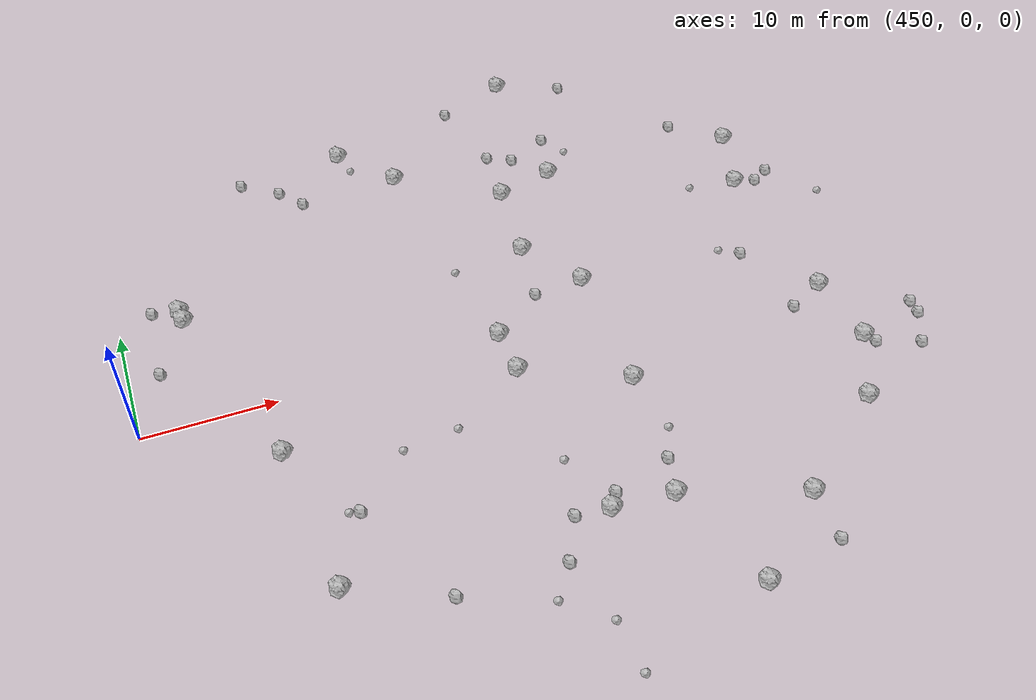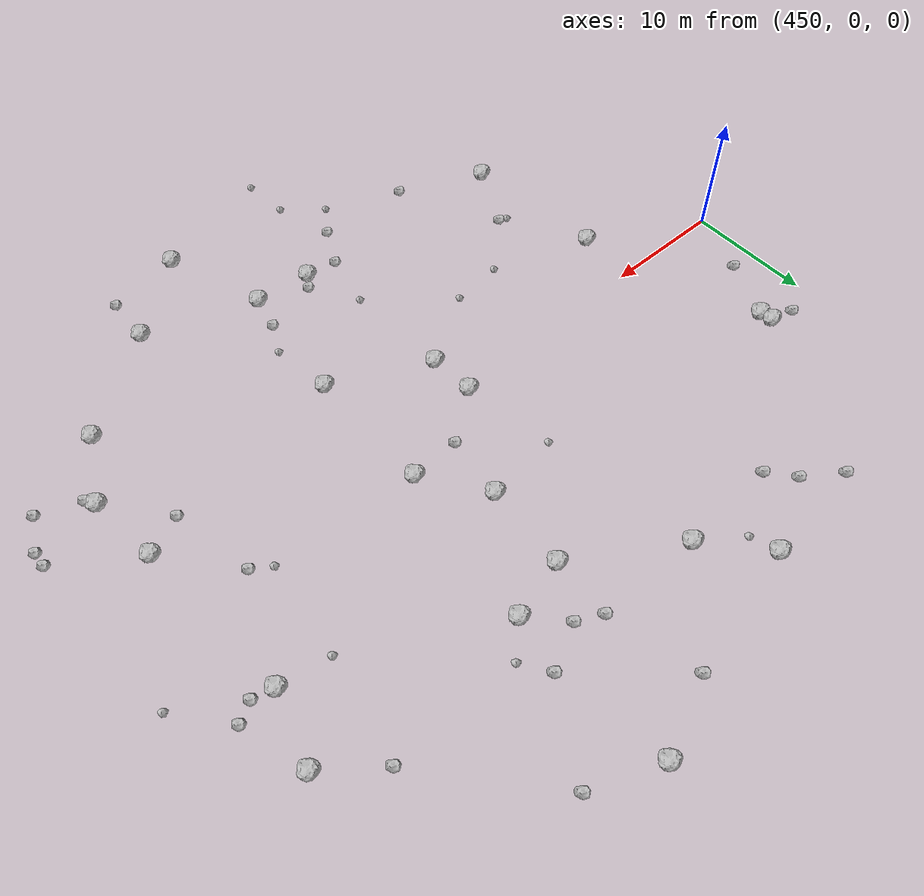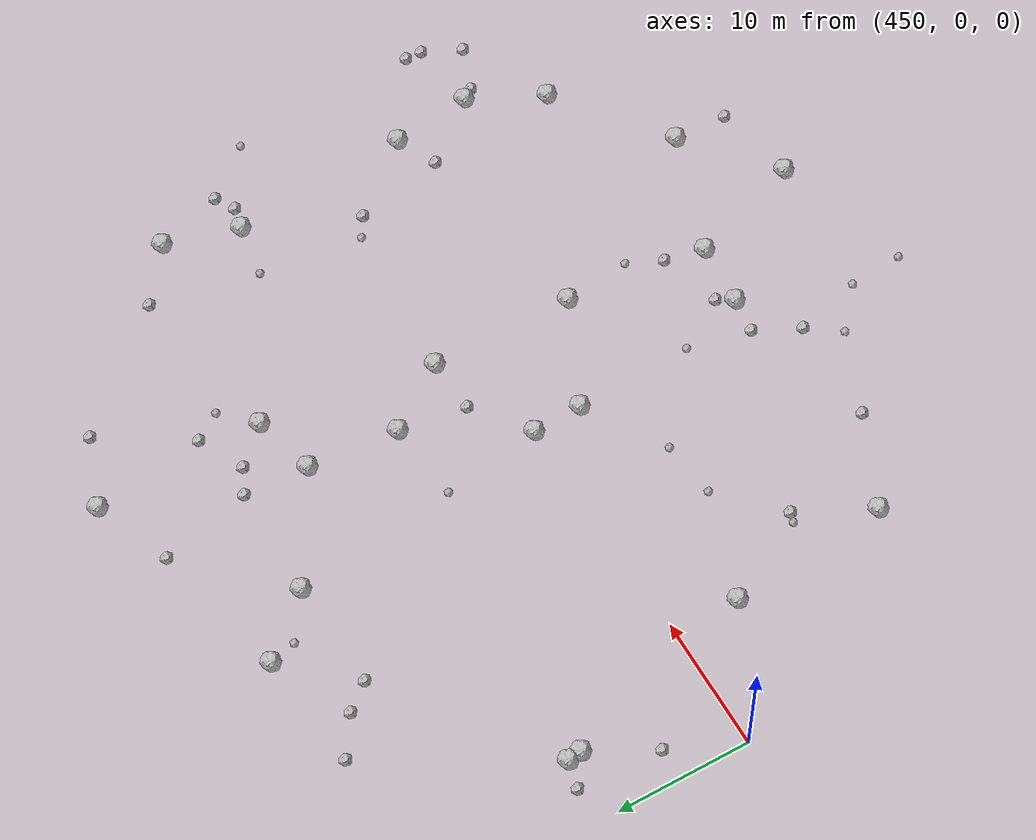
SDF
<sdf version="1.6">
 <world name="default">
  <include><uri>model://sun</uri></include>
  <model name="rock1_12_4">
   <include><uri>model://rock1</uri><pose>486.71268099229087 -25.438549325538915 0.5 0 0 0</pose></include>
  </model>
  <model name="rock1_12_5">
   <include><uri>model://rock1</uri><pose>492.8166071448539 -20.176126063927207 0.5 0 0 0</pose></include>
  </model>
  <model name="rock1_12_6">
   <include><uri>model://rock1</uri><pose>501.6473389458083 10.15743567219505 0.5 0 0 0</pose></include>
  </model>
  <model name="rock1_12_7">
   <include><uri>model://rock1</uri><pose>454.88779822414614 9.99733758299989 0.5 0 0 0</pose></include>
  </model>
  <model name="rock1_12_8">
   <include><uri>model://rock1</uri><pose>454.74939487316266 11.033216058486275 0.5 0 0 0</pose></include>
  </model>
  <model name="rock1_12_9">
   <include><uri>model://rock1</uri><pose>460.39612671076225 -16.616183947173873 0.5 0 0 0</pose></include>
  </model>
  <model name="rock1_12_10">
   <include><uri>model://rock1</uri><pose>503.2266049548724 -8.808707538663153 0.5 0 0 0</pose></include>
  </model>
  <model name="rock1_12_11">
   <include><uri>model://rock1</uri><pose>486.8501290716257 29.106871358682156 0.5 0 0 0</pose></include>
  </model>
  <model name="rock1_12_12">
   <include><uri>model://rock1</uri><pose>502.5313266429846 -2.9592155335735306 0.5 0 0 0</pose></include>
  </model>
  <model name="rock1_12_13">
   <include><uri>model://rock1</uri><pose>485.21618298309676 3.801018665662795 0.5 0 0 0</pose></include>
  </model>
  <model name="rock1_12_14">
   <include><uri>model://rock1</uri><pose>485.1292502573406 -6.767481153414899 0.5 0 0 0</pose></include>
  </model>
  <model name="rock1_12_15">
   <include><uri>model://rock1</uri><pose>479.2644201717403 -16.811341904872194 0.5 0 0 0</pose></include>
  </model>
  <model name="rock1_12_16">
   <include><uri>model://rock1</uri><pose>500.57046418815867 -14.099765747462712 0.5 0 0 0</pose></include>
  </model>
  <model name="rock1_12_17">
   <include><uri>model://rock1</uri><pose>482.52034096166835 15.29335865158977 0.5 0 0 0</pose></include>
  </model>
  <model name="rock1_12_18">
   <include><uri>model://rock1</uri><pose>477.198535277547 0.5362063339232819 0.5 0 0 0</pose></include>
  </model>
  <model name="rock1_12_19">
   <include><uri>model://rock1</uri><pose>487.1245165356307 16.518813257496483 0.5 0 0 0</pose></include>
  </model>
  <model name="rock1_12_20">
   <include><uri>model://rock1</uri><pose>481.92490238814725 8.582775652782544 0.5 0 0 0</pose></include>
  </model>
  <model name="rock1_12_21">
   <include><uri>model://rock1</uri><pose>474.5593548294113 20.162787073175686 0.5 0 0 0</pose></include>
  </model>
  <model name="rock1_12_22">
   <include><uri>model://rock1</uri><pose>503.19335711201416 15.588748424163313 0.5 0 0 0</pose></include>
  </model>
  <model name="rock1_12_23">
   <include><uri>model://rock1</uri><pose>477.36037951443944 -3.1570808231034633 0.5 0 0 0</pose></include>
  </model>
  <model name="rock1_12_24">
   <include><uri>model://rock1</uri><pose>470.7506974195005 24.51172418650262 0.5 0 0 0</pose></include>
  </model>
  <model name="rock1_12_25">
   <include><uri>model://rock1</uri><pose>483.8698793238803 -17.13378510829039 0.5 0 0 0</pose></include>
  </model>
  <model name="rock1_12_26">
   <include><uri>model://rock1</uri><pose>459.2964798253679 -4.781102411854523 0.5 0 0 0</pose></include>
  </model>
  <model name="rock2_12_0">
   <include><uri>model://rock2</uri><pose>491.9593075206605 27.060503356933353 0.3 0 0 0</pose></include>
  </model>
  <model name="rock2_12_1">
   <include><uri>model://rock2</uri><pose>498.2191981673955 2.235399047413459 0.3 0 0 0</pose></include>
  </model>
  <model name="rock2_12_2">
   <include><uri>model://rock2</uri><pose>506.97277284418703 -10.853905218767562 0.3 0 0 0</pose></include>
  </model>
  <model name="rock2_12_3">
   <include><uri>model://rock2</uri><pose>481.1627576156546 3.555853790441482 0.3 0 0 0</pose></include>
  </model>
  <model name="rock2_12_4">
   <include><uri>model://rock2</uri><pose>508.3188148385816 -6.914108205946036 0.3 0 0 0</pose></include>
  </model>
  <model name="rock2_12_5">
   <include><uri>model://rock2</uri><pose>462.073781519908 23.640215872550073 0.3 0 0 0</pose></include>
  </model>
  <model name="rock2_12_6">
   <include><uri>model://rock2</uri><pose>499.56241328522873 -4.384556357074235 0.3 0 0 0</pose></include>
  </model>
  <model name="rock2_12_7">
   <include><uri>model://rock2</uri><pose>492.6685300799604 -24.16291406434137 0.3 0 0 0</pose></include>
  </model>
  <model name="rock2_12_8">
   <include><uri>model://rock2</uri><pose>488.02196494077947 20.737357631588225 0.3 0 0 0</pose></include>
  </model>
  <model name="rock2_12_9">
   <include><uri>model://rock2</uri><pose>504.6831537408274 10.585368521408427 0.3 0 0 0</pose></include>
  </model>
  <model name="rock2_12_10">
   <include><uri>model://rock2</uri><pose>464.90142439410903 21.698420146452413 0.3 0 0 0</pose></include>
  </model>
  <model name="rock2_12_11">
   <include><uri>model://rock2</uri><pose>481.1039650947006 26.847108233673303 0.3 0 0 0</pose></include>
  </model>
  <model name="rock2_12_12">
   <include><uri>model://rock2</uri><pose>503.73175684694695 -9.65087261171653 0.3 0 0 0</pose></include>
  </model>
  <model name="rock2_12_13">
   <include><uri>model://rock2</uri><pose>466.47207507208014 19.7633531068322 0.3 0 0 0</pose></include>
  </model>
  <model name="rock2_12_14">
   <include><uri>model://rock2</uri><pose>482.757614551833 20.045721134211284 0.3 0 0 0</pose></include>
  </model>
  <model name="rock2_12_15">
   <include><uri>model://rock2</uri><pose>508.28082220145035 -8.138223198471302 0.3 0 0 0</pose></include>
  </model>
  <model name="rock2_12_16">
   <include><uri>model://rock2</uri><pose>484.5051328338035 -14.25211044170074 0.3 0 0 0</pose></include>
  </model>
  <model name="rock2_12_17">
   <include><uri>model://rock2</uri><pose>499.2479405735879 18.652236983554452 0.3 0 0 0</pose></include>
  </model>
  <model name="rock2_12_18">
   <include><uri>model://rock2</uri><pose>503.26740549879685 9.75474031537118 0.3 0 0 0</pose></include>
  </model>
  <model name="rock2_12_19">
   <include><uri>model://rock2</uri><pose>452.6757966096854 11.5276922462605 0.3 0 0 0</pose></include>
  </model>
  <model name="rock2_12_20">
   <include><uri>model://rock2</uri><pose>463.13532072505785 -11.332631112334617 0.3 0 0 0</pose></include>
  </model>
  <model name="rock2_12_21">
   <include><uri>model://rock2</uri><pose>475.01321335813503 -19.752549818698917 0.3 0 0 0</pose></include>
  </model>
  <model name="rock2_12_22">
   <include><uri>model://rock2</uri><pose>452.31995754617094 5.288794718907901 0.3 0 0 0</pose></include>
  </model>
  <model name="rock2_12_23">
   <include><uri>model://rock2</uri><pose>467.22416784457016 -19.66444213608859 0.3 0 0 0</pose></include>
  </model>
  <model name="rock2_12_24">
   <include><uri>model://rock2</uri><pose>476.6280837791832 -16.532456387235037 0.3 0 0 0</pose></include>
  </model>
  <model name="rock2_12_25">
   <include><uri>model://rock2</uri><pose>479.98331123943166 -15.665368676976122 0.3 0 0 0</pose></include>
  </model>
  <model name="rock2_12_26">
   <include><uri>model://rock2</uri><pose>484.6804429791453 19.10583825623484 0.3 0 0 0</pose></include>
  </model>
  <model name="rock3_12_0">
   <include><uri>model://rock3</uri><pose>467.29480816778323 -7.426872252927041 0.2 0 0 0</pose></include>
  </model>
  <model name="rock3_12_1">
   <include><uri>model://rock3</uri><pose>489.3486946758937 18.656425288844545 0.2 0 0 0</pose></include>
  </model>
  <model name="rock3_12_2">
   <include><uri>model://rock3</uri><pose>471.25028471902044 22.41702925767696 0.2 0 0 0</pose></include>
  </model>
  <model name="rock3_12_3">
   <include><uri>model://rock3</uri><pose>471.518900914461 -6.887169275229208 0.2 0 0 0</pose></include>
  </model>
  <model name="rock3_12_4">
   <include><uri>model://rock3</uri><pose>473.31412972384294 -22.183940578257868 0.2 0 0 0</pose></include>
  </model>
  <model name="rock3_12_5">
   <include><uri>model://rock3</uri><pose>462.3945477892316 -11.156303715800625 0.2 0 0 0</pose></include>
  </model>
  <model name="rock3_12_6">
   <include><uri>model://rock3</uri><pose>476.0262366069784 7.890912293276337 0.2 0 0 0</pose></include>
  </model>
  <model name="rock3_12_7">
   <include><uri>model://rock3</uri><pose>496.74122975182684 3.1273478041163756 0.2 0 0 0</pose></include>
  </model>
  <model name="rock3_12_8">
   <include><uri>model://rock3</uri><pose>477.6329006634342 -11.969188452997688 0.2 0 0 0</pose></include>
  </model>
  <model name="rock3_12_9">
   <include><uri>model://rock3</uri><pose>476.30118378201377 -24.696739764085265 0.2 0 0 0</pose></include>
  </model>
  <model name="rock3_12_10">
   <include><uri>model://rock3</uri><pose>497.7033942207546 10.69864778292299 0.2 0 0 0</pose></include>
  </model>
  <model name="rock3_12_11">
   <include><uri>model://rock3</uri><pose>485.6837378132303 -11.799266756853878 0.2 0 0 0</pose></include>
  </model>
  <model name="rock3_12_12">
   <include><uri>model://rock3</uri><pose>476.5851998352302 -28.64929441870064 0.2 0 0 0</pose></include>
  </model>
  <model name="rock3_12_13">
   <include><uri>model://rock3</uri><pose>507.70258857226855 6.8656650460962325 0.2 0 0 0</pose></include>
  </model>
 </world>
</sdf>
